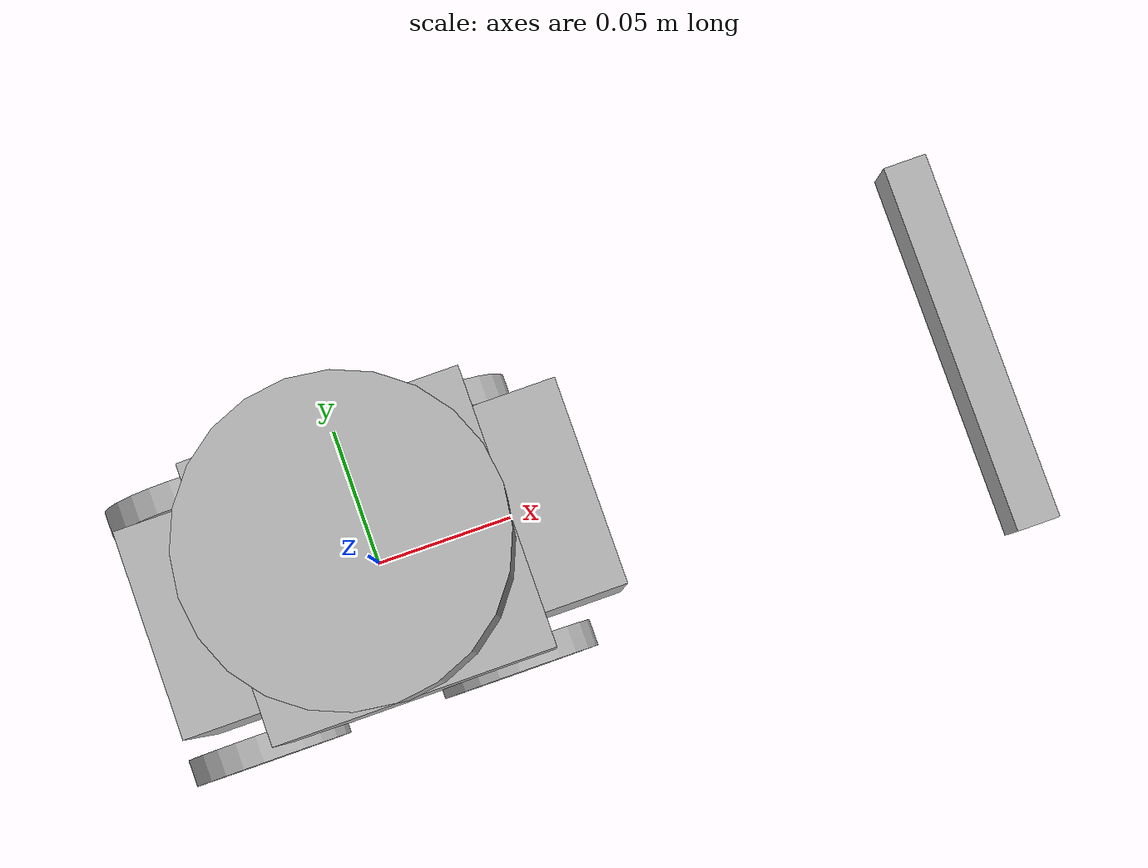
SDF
<sdf version='1.7'>
  <model name='porter_bot'>
    <link name='base_link'>
      <inertial>
        <pose>0.000493 0 0.001163 1.5708 -0 1.5708</pose>
        <mass>15.26</mass>
        <inertia>
          <ixx>0.0466889</ixx>
          <ixy>-1.04103e-19</ixy>
          <ixz>-4.57256e-19</ixz>
          <iyy>0.0428121</iyy>
          <iyz>-0.000367497</iyz>
          <izz>0.020106</izz>
        </inertia>
      </inertial>
      <collision name='base_link_collision'>
        <pose>0 0 0 0 -0 0</pose>
        <geometry>
          <box>
            <size>0.16 0.075 0.085</size>
          </box>
        </geometry>
      </collision>
      <collision name='base_link_fixed_joint_lump__camera_link_collision_1'>
        <pose>0.215 0 0.05 0 -0 0</pose>
        <geometry>
          <box>
            <size>0.015 0.13 0.022</size>
          </box>
        </geometry>
        <surface>
          <contact>
            <ode/>
          </contact>
          <friction>
            <ode/>
          </friction>
        </surface>
      </collision>
      <collision name='base_link_fixed_joint_lump__imu_link_collision_2'>
        <pose>0 0 0.01 0 -0 0</pose>
        <geometry>
          <box>
            <size>0.1 0.1 0.1</size>
          </box>
        </geometry>
        <surface>
          <contact>
            <ode/>
          </contact>
          <friction>
            <ode/>
          </friction>
        </surface>
      </collision>
      <collision name='base_link_fixed_joint_lump__lidar_link_collision_3'>
        <pose>0 0 0.12 0 -0 0</pose>
        <geometry>
          <cylinder>
            <length>0.055</length>
            <radius>0.0508</radius>
          </cylinder>
        </geometry>
        <surface>
          <contact>
            <ode/>
          </contact>
          <friction>
            <ode/>
          </friction>
        </surface>
      </collision>
      <visual name='base_link_visual'>
        <pose>0 0 0 0 -0 0</pose>
        <geometry>
          <box>
            <size>0.16 0.075 0.085</size>
          </box>
        </geometry>
      </visual>
      <visual name='base_link_fixed_joint_lump__camera_link_visual_1'>
        <pose>0.215 0 0.05 0 -0 0</pose>
        <geometry>
          <box>
            <size>0.015 0.13 0.022</size>
          </box>
        </geometry>
      </visual>
      <visual name='base_link_fixed_joint_lump__imu_link_visual_2'>
        <pose>0 0 0.01 0 -0 0</pose>
        <geometry>
          <box>
            <size>0.1 0.1 0.1</size>
          </box>
        </geometry>
      </visual>
      <visual name='base_link_fixed_joint_lump__lidar_link_visual_3'>
        <pose>0 0 0.12 0 -0 0</pose>
        <geometry>
          <cylinder>
            <length>0.055</length>
            <radius>0.0508</radius>
          </cylinder>
        </geometry>
      </visual>
      <sensor name='depth_camera' type='depth'>
        <visualize>1</visualize>
        <update_rate>30</update_rate>
        <camera name='camera'>
          <horizontal_fov>1.0472</horizontal_fov>
          <image>
            <width>640</width>
            <height>480</height>
            <format>R8G8B8</format>
          </image>
          <clip>
            <near>0.05</near>
            <far>3</far>
          </clip>
        </camera>
        <plugin name='depth_camera_controller' filename='libgazebo_ros_camera.so'>
          <baseline>0.2</baseline>
          <alwaysOn>1</alwaysOn>
          <updateRate>0.0</updateRate>
          <frameName>camera_depth_frame</frameName>
          <pointCloudCutoff>0.5</pointCloudCutoff>
          <pointCloudCutoffMax>3.0</pointCloudCutoffMax>
          <distortionK1>0</distortionK1>
          <distortionK2>0</distortionK2>
          <distortionK3>0</distortionK3>
          <distortionT1>0</distortionT1>
          <distortionT2>0</distortionT2>
          <CxPrime>0</CxPrime>
          <Cx>0</Cx>
          <Cy>0</Cy>
          <focalLength>0</focalLength>
          <hackBaseline>0</hackBaseline>
        </plugin>
        <pose>0.215 0 0.05 0 -0 0</pose>
      </sensor>
      <sensor name='imu_sensor' type='imu'>
        <plugin name='imu_plugin' filename='libgazebo_ros_imu_sensor.so'>
          <ros>
            <namespace>/demo</namespace>
            <remapping>~/out:=imu</remapping>
          </ros>
          <initial_orientation_as_reference>0</initial_orientation_as_reference>
        </plugin>
        <always_on>1</always_on>
        <update_rate>100</update_rate>
        <visualize>1</visualize>
        <imu>
          <angular_velocity>
            <x>
              <noise type='gaussian'>
                <mean>0</mean>
                <stddev>0.0002</stddev>
                <bias_mean>7.5e-06</bias_mean>
                <bias_stddev>8e-07</bias_stddev>
              </noise>
            </x>
            <y>
              <noise type='gaussian'>
                <mean>0</mean>
                <stddev>0.0002</stddev>
                <bias_mean>7.5e-06</bias_mean>
                <bias_stddev>8e-07</bias_stddev>
              </noise>
            </y>
            <z>
              <noise type='gaussian'>
                <mean>0</mean>
                <stddev>0.0002</stddev>
                <bias_mean>7.5e-06</bias_mean>
                <bias_stddev>8e-07</bias_stddev>
              </noise>
            </z>
          </angular_velocity>
          <linear_acceleration>
            <x>
              <noise type='gaussian'>
                <mean>0</mean>
                <stddev>0.017</stddev>
                <bias_mean>0.1</bias_mean>
                <bias_stddev>0.001</bias_stddev>
              </noise>
            </x>
            <y>
              <noise type='gaussian'>
                <mean>0</mean>
                <stddev>0.017</stddev>
                <bias_mean>0.1</bias_mean>
                <bias_stddev>0.001</bias_stddev>
              </noise>
            </y>
            <z>
              <noise type='gaussian'>
                <mean>0</mean>
                <stddev>0.017</stddev>
                <bias_mean>0.1</bias_mean>
                <bias_stddev>0.001</bias_stddev>
              </noise>
            </z>
          </linear_acceleration>
        </imu>
        <pose>0 0 0.01 0 -0 0</pose>
      </sensor>
      <sensor name='lidar' type='ray'>
        <always_on>1</always_on>
        <visualize>1</visualize>
        <update_rate>5</update_rate>
        <ray>
          <scan>
            <horizontal>
              <samples>360</samples>
              <resolution>1</resolution>
              <min_angle>0</min_angle>
              <max_angle>6.28</max_angle>
            </horizontal>
          </scan>
          <range>
            <min>0.12</min>
            <max>3.5</max>
            <resolution>0.015</resolution>
          </range>
          <noise>
            <type>gaussian</type>
            <mean>0</mean>
            <stddev>0.01</stddev>
          </noise>
        </ray>
        <plugin name='scan' filename='libgazebo_ros_ray_sensor.so'>
          <ros>
            <remapping>~/out:=scan</remapping>
          </ros>
          <output_type>sensor_msgs/LaserScan</output_type>
          <frame_name>lidar_link</frame_name>
        </plugin>
        <pose>0 0 0.12 0 -0 0</pose>
      </sensor>
    </link>
    <joint name='frontwhl_l_joint' type='revolute'>
      <pose relative_to='base_link'>0.035 0.0485 -0.0305 0 -0 0</pose>
      <parent>base_link</parent>
      <child>frontwhl_l_link</child>
      <axis>
        <xyz>0 1 0</xyz>
        <limit>
          <lower>-1e+16</lower>
          <upper>1e+16</upper>
        </limit>
        <dynamics>
          <spring_reference>0</spring_reference>
          <spring_stiffness>0</spring_stiffness>
        </dynamics>
      </axis>
    </joint>
    <link name='frontwhl_l_link'>
      <pose relative_to='frontwhl_l_joint'>0 0 0 0 -0 0</pose>
      <inertial>
        <pose>0 0 0 1.5708 -0 0</pose>
        <mass>0.5</mass>
        <inertia>
          <ixx>0.000116667</ixx>
          <ixy>0</ixy>
          <ixz>0</ixz>
          <iyy>0.000116667</iyy>
          <iyz>0</iyz>
          <izz>0.000225</izz>
        </inertia>
      </inertial>
      <collision name='frontwhl_l_link_collision'>
        <pose>0 0 0 1.5708 -0 0</pose>
        <geometry>
          <cylinder>
            <length>0.01</length>
            <radius>0.03</radius>
          </cylinder>
        </geometry>
      </collision>
      <visual name='frontwhl_l_link_visual'>
        <pose>0 0 0 1.5708 -0 0</pose>
        <geometry>
          <cylinder>
            <length>0.01</length>
            <radius>0.03</radius>
          </cylinder>
        </geometry>
      </visual>
    </link>
    <joint name='frontwhl_r_joint' type='revolute'>
      <pose relative_to='base_link'>0.035 -0.0485 -0.0305 0 -0 0</pose>
      <parent>base_link</parent>
      <child>frontwhl_r_link</child>
      <axis>
        <xyz>0 1 0</xyz>
        <limit>
          <lower>-1e+16</lower>
          <upper>1e+16</upper>
        </limit>
        <dynamics>
          <spring_reference>0</spring_reference>
          <spring_stiffness>0</spring_stiffness>
        </dynamics>
      </axis>
    </joint>
    <link name='frontwhl_r_link'>
      <pose relative_to='frontwhl_r_joint'>0 0 0 0 -0 0</pose>
      <inertial>
        <pose>0 0 0 1.5708 -0 0</pose>
        <mass>0.5</mass>
        <inertia>
          <ixx>0.000116667</ixx>
          <ixy>0</ixy>
          <ixz>0</ixz>
          <iyy>0.000116667</iyy>
          <iyz>0</iyz>
          <izz>0.000225</izz>
        </inertia>
      </inertial>
      <collision name='frontwhl_r_link_collision'>
        <pose>0 0 0 1.5708 -0 0</pose>
        <geometry>
          <cylinder>
            <length>0.01</length>
            <radius>0.03</radius>
          </cylinder>
        </geometry>
      </collision>
      <visual name='frontwhl_r_link_visual'>
        <pose>0 0 0 1.5708 -0 0</pose>
        <geometry>
          <cylinder>
            <length>0.01</length>
            <radius>0.03</radius>
          </cylinder>
        </geometry>
      </visual>
    </link>
    <joint name='rearwhl_l_joint' type='revolute'>
      <pose relative_to='base_link'>-0.062 0.0485 -0.0305 0 -0 0</pose>
      <parent>base_link</parent>
      <child>rearwhl_l_link</child>
      <axis>
        <xyz>0 1 0</xyz>
        <limit>
          <lower>-1e+16</lower>
          <upper>1e+16</upper>
        </limit>
        <dynamics>
          <spring_reference>0</spring_reference>
          <spring_stiffness>0</spring_stiffness>
        </dynamics>
      </axis>
    </joint>
    <link name='rearwhl_l_link'>
      <pose relative_to='rearwhl_l_joint'>0 0 0 0 -0 0</pose>
      <inertial>
        <pose>0 0 0 1.5708 -0 0</pose>
        <mass>0.5</mass>
        <inertia>
          <ixx>0.000116667</ixx>
          <ixy>0</ixy>
          <ixz>0</ixz>
          <iyy>0.000116667</iyy>
          <iyz>0</iyz>
          <izz>0.000225</izz>
        </inertia>
      </inertial>
      <collision name='rearwhl_l_link_collision'>
        <pose>0 0 0 1.5708 -0 0</pose>
        <geometry>
          <cylinder>
            <length>0.01</length>
            <radius>0.03</radius>
          </cylinder>
        </geometry>
      </collision>
      <visual name='rearwhl_l_link_visual'>
        <pose>0 0 0 1.5708 -0 0</pose>
        <geometry>
          <cylinder>
            <length>0.01</length>
            <radius>0.03</radius>
          </cylinder>
        </geometry>
      </visual>
    </link>
    <joint name='rearwhl_r_joint' type='revolute'>
      <pose relative_to='base_link'>-0.062 -0.0485 -0.0305 0 -0 0</pose>
      <parent>base_link</parent>
      <child>rearwhl_r_link</child>
      <axis>
        <xyz>0 1 0</xyz>
        <limit>
          <lower>-1e+16</lower>
          <upper>1e+16</upper>
        </limit>
        <dynamics>
          <spring_reference>0</spring_reference>
          <spring_stiffness>0</spring_stiffness>
        </dynamics>
      </axis>
    </joint>
    <link name='rearwhl_r_link'>
      <pose relative_to='rearwhl_r_joint'>0 0 0 0 -0 0</pose>
      <inertial>
        <pose>0 0 0 1.5708 -0 0</pose>
        <mass>0.5</mass>
        <inertia>
          <ixx>0.000116667</ixx>
          <ixy>0</ixy>
          <ixz>0</ixz>
          <iyy>0.000116667</iyy>
          <iyz>0</iyz>
          <izz>0.000225</izz>
        </inertia>
      </inertial>
      <collision name='rearwhl_r_link_collision'>
        <pose>0 0 0 1.5708 -0 0</pose>
        <geometry>
          <cylinder>
            <length>0.01</length>
            <radius>0.03</radius>
          </cylinder>
        </geometry>
      </collision>
      <visual name='rearwhl_r_link_visual'>
        <pose>0 0 0 1.5708 -0 0</pose>
        <geometry>
          <cylinder>
            <length>0.01</length>
            <radius>0.03</radius>
          </cylinder>
        </geometry>
      </visual>
    </link>
    <plugin name='porter_diff_drive' filename='libgazebo_ros_diff_drive.so'>
      <ros>
        <namespace>/demo</namespace>
      </ros>
      <left_joint>rearwhl_l_joint</left_joint>
      <right_joint>rearwhl_r_joint</right_joint>
      <wheel_separation>0.011</wheel_separation>
      <wheel_diameter>0.06</wheel_diameter>
      <max_wheel_torque>20</max_wheel_torque>
      <max_wheel_acceleration>1.0</max_wheel_acceleration>
      <publish_odom>1</publish_odom>
      <publish_odom_tf>1</publish_odom_tf>
      <publish_wheel_tf>1</publish_wheel_tf>
      <odometry_frame>odom</odometry_frame>
      <robot_base_frame>base_link</robot_base_frame>
    </plugin>
    <static>0</static>
    <plugin name='porter_diff_drive' filename='libgazebo_ros_diff_drive.so'>
      <ros>
        <namespace>/demo</namespace>
      </ros>
      <left_joint>frontwhl_l_joint</left_joint>
      <right_joint>frontwhl_r_joint</right_joint>
      <wheel_separation>0.011</wheel_separation>
      <wheel_diameter>0.06</wheel_diameter>
      <max_wheel_torque>20</max_wheel_torque>
      <max_wheel_acceleration>1.0</max_wheel_acceleration>
      <publish_odom>1</publish_odom>
      <publish_odom_tf>1</publish_odom_tf>
      <publish_wheel_tf>1</publish_wheel_tf>
      <odometry_frame>odom</odometry_frame>
      <robot_base_frame>base_link</robot_base_frame>
    </plugin>
  </model>
</sdf>
